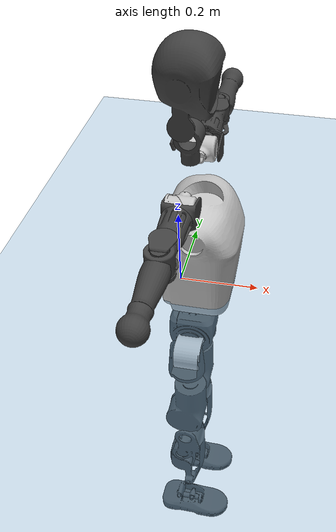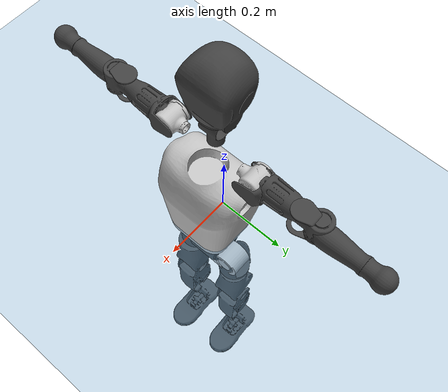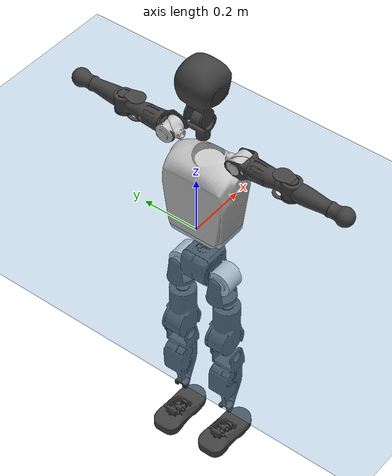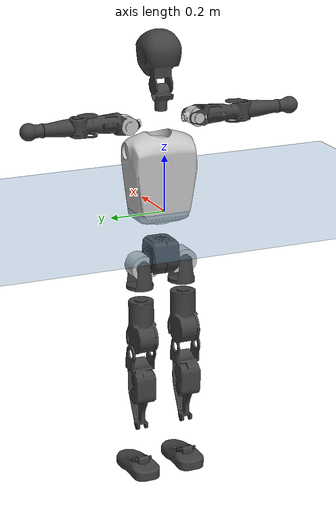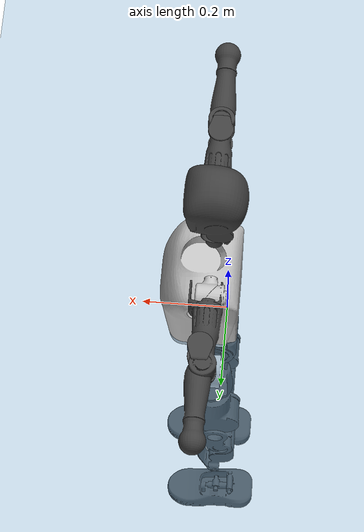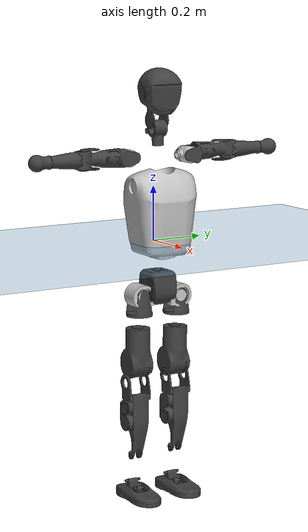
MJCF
<mujoco model="T1">
  <compiler angle="radian" assetdir="assets" balanceinertia="true" inertiafromgeom="false"/>

  <option timestep="0.005" density="1.2" viscosity="2e-05"/>

  <size nkey="1"/>

  <visual>
    <quality shadowsize="8192"/>
    <map shadowclip="0.5"/>
  </visual>

  <default>
    <default class="/">
      <joint armature="0.01" damping="0.01" frictionloss="0.1"/>
      <geom contype="0" conaffinity="0" group="1" solref="-1000 -80"/>
      <site size="0.01 0.005 0.005" group="5"/>
      <general forcelimited="true" biastype="affine" gainprm="25" biasprm="0 -25 -0.6"/>
      <default class="t1">
        <geom rgba="0.25 0.25 0.25 1"/>
        <default class="visual">
          <geom type="mesh" group="2"/>
        </default>
        <default class="collision">
          <geom group="3"/>
        </default>
        <default class="foot">
          <geom size="0.1115 0.05 0.015" type="box" condim="6" group="4" priority="1" solimp="0.015 1 0.015"/>
        </default>
        <default class="reward_collision_sphere">
          <geom group="5" rgba="1 0 0 1"/>
        </default>
      </default>
    </default>
  </default>

  <asset>
    <texture type="skybox" colorspace="auto" name="//unnamed_texture_0" builtin="gradient" rgb1="0.95 0.95 0.95" rgb2="0.95 0.95 0.95" width="100" height="600"/>
    <texture type="2d" colorspace="auto" name="texplane" builtin="checker" rgb1="0.345 0.575 0.748" rgb2="0.345 0.575 0.748" markrgb="1 1 1" width="512" height="512"/>
    <material name="MatPlane" class="/" texture="texplane" texuniform="true" texrepeat="2 2" specular="0.9"/>
    <mesh name="Trunk" class="/" file="Trunk.stl"/>
    <mesh name="H1" class="/" file="H1.stl"/>
    <mesh name="H2" class="/" file="H2.stl"/>
    <mesh name="AL1" class="/" file="AL1.stl"/>
    <mesh name="AL2" class="/" file="AL2.stl"/>
    <mesh name="AL3" class="/" file="AL3.stl"/>
    <mesh name="left_hand_link" class="/" file="left_hand_link.stl"/>
    <mesh name="AR1" class="/" file="AR1.stl"/>
    <mesh name="AR2" class="/" file="AR2.stl"/>
    <mesh name="AR3" class="/" file="AR3.stl"/>
    <mesh name="right_hand_link" class="/" file="right_hand_link.stl"/>
    <mesh name="Waist" class="/" file="Waist.stl"/>
    <mesh name="Hip_Pitch_Left" class="/" file="Hip_Pitch_Left.stl"/>
    <mesh name="Hip_Roll_Left" class="/" file="Hip_Roll_Left.stl"/>
    <mesh name="Hip_Yaw_Left" class="/" file="Hip_Yaw_Left.stl"/>
    <mesh name="Shank_Left" class="/" file="Shank_Left.stl"/>
    <mesh name="Ankle_Cross_Left" class="/" file="Ankle_Cross_Left.stl"/>
    <mesh name="left_foot_link" class="/" file="left_foot_link.stl"/>
    <mesh name="Hip_Pitch_Right" class="/" file="Hip_Pitch_Right.stl"/>
    <mesh name="Hip_Roll_Right" class="/" file="Hip_Roll_Right.stl"/>
    <mesh name="Hip_Yaw_Right" class="/" file="Hip_Yaw_Right.stl"/>
    <mesh name="Shank_Right" class="/" file="Shank_Right.stl"/>
    <mesh name="Ankle_Cross_Right" class="/" file="Ankle_Cross_Right.stl"/>
    <mesh name="right_foot_link" class="/" file="right_foot_link.stl"/>
  </asset>

  <worldbody>
    <geom name="floor" class="/" size="100 100 0.125" type="plane" group="0" material="MatPlane"/>
    <light name="toplight_shadow" class="/" pos="0 0 5" dir="0.0990148 0.0990148 -0.990148" type="directional" ambient="0.04 0.04 0.04" diffuse="0.55 0.55 0.55" specular="0.12 0.12 0.12"/>
    <light name="toplight_fill" class="/" pos="0 0 5" dir="0.0990148 0.0990148 -0.990148" type="directional" castshadow="false" ambient="0.04 0.04 0.04" diffuse="0.3 0.3 0.3" specular="0.08 0.08 0.08"/>
    <body name="trunk" childclass="t1" pos="0.00126469 -7.76488e-05 -0.00668391" quat="0.999999 0.000308247 -0.00145621 -0.000448756">
      <inertial pos="0.0349412 0.00608773 0.15062" quat="0.999967 0.00479889 -0.00603773 0.00269054" mass="9.26963" diaginertia="0.0034237 0.0191019 0.35636"/>
      <joint name="//unnamed_joint_0" type="free" armature="0" damping="0" frictionloss="0"/>
      <geom name="//unnamed_geom_1" class="visual" rgba="0.76 0.76 0.76 1" mesh="Trunk"/>
      <geom name="//unnamed_geom_2" class="collision" size="0.0688189 0.0917586 0.137638" pos="0.0318566 0 0.175597" type="box"/>
      <geom name="//unnamed_geom_3" class="reward_collision_sphere" size="0.105522" pos="0.0318566 0 0.146331"/>
      <geom name="//unnamed_geom_4" class="reward_collision_sphere" size="0.0137638" pos="0.0318566 0.0644731 0"/>
      <geom name="//unnamed_geom_5" class="reward_collision_sphere" size="0.0137638" pos="0.0318566 -0.0644731 0"/>
      <geom name="//unnamed_geom_6" class="reward_collision_sphere" size="0.0137638" pos="0.0318566 0.0811602 0.263395"/>
      <geom name="//unnamed_geom_7" class="reward_collision_sphere" size="0.0137638" pos="0.0318566 -0.0811602 0.263395"/>
      <site name="imu" pos="0.0542929 -0.0563196 0.0531401" size="0.00917586"/>
      <camera name="track" pos="0 -1.51701 0" quat="0.707107 0.707107 0 0" mode="trackcom"/>
      <camera name="ego_camera" pos="0.0647751 0 0.614589" quat="-0.5 -0.5 0.5 0.5"/>
      <body name="H1" pos="0.0324151 -5.30025e-05 0.357739" quat="0.999986 0.00102776 -0.00323422 -0.00401938">
        <inertial pos="-0.00145149 -0.00098784 0.0812527" quat="0.763919 -0.0127636 0.00111951 0.645185" mass="0.257931" diaginertia="9.89804e-06 4.81573e-05 0.000875117"/>
        <joint name="AAHead_yaw" pos="0 0 0" axis="0.0199022 0.0187296 0.999626" stiffness="0.00319844" range="-1.56334 1.53652" armature="0.00365901" damping="0.0433991" frictionloss="0.0986946"/>
        <geom name="//unnamed_geom_8" class="visual" mesh="H1"/>
        <body name="H2" pos="-0.0126031 0.00563289 0.0907575" quat="0.999997 -0.000562937 0.00225328 -0.000334328">
          <inertial pos="0.00164708 0.000239488 0.143059" quat="0.988276 0.108454 -0.0737159 -0.0781888" mass="0.505814" diaginertia="8.90512e-05 0.000483127 0.0109835"/>
          <joint name="Head_pitch" pos="0 0 0" axis="0.0267335 -0.999386 -0.0226528" range="-1.20955 0.464956" armature="0.00807774" damping="0.0240774" frictionloss="0.0904639"/>
          <geom name="//unnamed_geom_9" class="visual" mesh="H2"/>
          <geom name="//unnamed_geom_10" class="collision" size="0.0734068" pos="0.00530943 0 0.160964"/>
          <geom name="//unnamed_geom_11" class="reward_collision_sphere" size="0.0825827" pos="0.0106189 0 0.146331"/>
        </body>
      </body>
      <body name="AL1" pos="0.0342939 0.0775368 0.318418" quat="0.999994 -0.00171702 -0.00296871 0.000870581">
        <inertial pos="-0.00148109 0.0252012 -0.000271691" quat="0.504636 0.495476 -0.503317 0.496505" mass="0.412502" diaginertia="5.30693e-05 0.000335311 0.00203304"/>
        <joint name="Left_Shoulder_Pitch" pos="0 0 0" axis="-0.00796715 0.999936 0.00804133" stiffness="0.0156336" range="-3.38021 1.21062" armature="0.0100852" damping="0.0133341" frictionloss="0.120182"/>
        <geom name="//unnamed_geom_12" class="visual" rgba="0.76 0.76 0.76 1" mesh="AL1"/>
        <body name="AL2" pos="0.00850047 0.0309442 0.00098009" quat="1 0.00026027 -0.000235864 -8.92528e-06">
          <inertial pos="0.00376221 0.030408 -0.00957441" quat="0.492957 0.50804 -0.485852 0.512676" mass="0.0997739" diaginertia="1.52288e-05 8.92674e-05 0.00101786"/>
          <joint name="Left_Shoulder_Roll" pos="0 0 0" axis="-0.999663 0.0256111 0.00430127" range="-1.78539 1.52974" armature="0.0136324" damping="0.0350966" frictionloss="0.0921918"/>
          <geom name="//unnamed_geom_13" class="visual" mesh="AL2"/>
          <body name="AL3" pos="-0.00632856 0.0442813 0.00920002" quat="1 -6.43398e-05 5.93668e-05 -3.98966e-05">
            <inertial pos="-0.00643148 0.0649058 0.000604524" quat="0.705033 0.7088 -0.0178128 -0.0146385" mass="0.813627" diaginertia="0.000611221 0.00305433 0.00493145"/>
            <joint name="Left_Elbow_Pitch" pos="0 0 0" axis="-0.0589032 -0.998217 0.00961827" stiffness="0.0572867" range="-2.48777 2.10087" armature="0.0147967" damping="0.0698105" frictionloss="0.124837"/>
            <geom name="//unnamed_geom_14" class="visual" mesh="AL3"/>
            <geom name="//unnamed_geom_15" class="collision" size="0.0275276 0.0688189" pos="0 0.0379253 0" quat="0.707105 0.707108 0 0" type="cylinder"/>
            <geom name="//unnamed_geom_16" class="reward_collision_sphere" size="0.0330331"/>
            <body name="left_hand_link" pos="0.0083743 0.103822 -0.00160988" quat="0.999998 0.00143868 -0.00158487 0.000194201">
              <inertial pos="0.000150093 0.0829462 -0.00439227" quat="0.707463 0.706746 -0.00226146 0.00010533" mass="0.254941" diaginertia="0.000303031 0.00178933 0.00147946"/>
              <joint name="Left_Elbow_Yaw" pos="0 0 0" axis="-0.00121398 0.0326484 0.999466" stiffness="0.00814427" range="-2.35116 0.0202666" armature="0.00377005" damping="0.00897551" frictionloss="0.117521"/>
              <geom name="//unnamed_geom_17" class="visual" mesh="left_hand_link"/>
              <geom name="//unnamed_geom_18" class="collision" size="0.0275276 0.0802887" pos="0 0.0986059 0" quat="0.707105 0.707108 0 0" type="cylinder"/>
              <geom name="//unnamed_geom_19" class="reward_collision_sphere" size="0.0458793"/>
              <geom name="//unnamed_geom_20" class="reward_collision_sphere" size="0.0321155" pos="0 0.0834357 0"/>
              <geom name="//unnamed_geom_21" class="reward_collision_sphere" size="0.0321155" pos="0 0.163079 0"/>
            </body>
          </body>
        </body>
      </body>
      <body name="AR1" pos="0.0393375 -0.0857356 0.321922" quat="1 0.000363324 0.000644501 9.32879e-05">
        <inertial pos="0.0100077 -0.0375415 -0.00725777" quat="0.503502 0.526898 -0.455368 0.511374" mass="0.391326" diaginertia="6.21394e-05 0.000350289 0.00172597"/>
        <joint name="Right_Shoulder_Pitch" pos="0 0 0" axis="0.00281181 -0.999911 -0.0130348" range="-1.23726 3.3268" armature="0.0101322" damping="0" frictionloss="0.124424"/>
        <geom name="//unnamed_geom_22" class="visual" rgba="0.76 0.76 0.76 1" mesh="AR1"/>
        <body name="AR2" pos="0.00180371 -0.0328229 0.00167619" quat="0.999999 -0.000347207 -0.00125366 -0.000176977">
          <inertial pos="-6.60493e-05 -0.0287677 -0.00423934" quat="0.511607 0.487994 -0.511773 0.488066" mass="0.122603" diaginertia="1.71885e-05 7.64917e-05 0.001109"/>
          <joint name="Right_Shoulder_Roll" pos="0 0 0" axis="-0.999858 0.00544327 0.0159657" range="-1.83791 1.34475" armature="0.0123516" damping="0" frictionloss="0.0907851"/>
          <geom name="//unnamed_geom_23" class="visual" mesh="AR2"/>
          <body name="AR3" pos="-0.000558015 -0.0457959 0.000631245" quat="1 -0.000412053 0.000188644 -0.000357742">
            <inertial pos="-0.00148641 -0.0541657 -0.0082448" quat="0.732167 0.681019 0.0104488 0.00600762" mass="0.787755" diaginertia="0.000520581 0.00357563 0.00381295"/>
            <joint name="Right_Elbow_Pitch" pos="0 0 0" axis="0.0209227 0.999773 0.00394363" range="-2.38776 2.41927" armature="0.00851053" damping="0" frictionloss="0.090775"/>
            <geom name="//unnamed_geom_24" class="visual" mesh="AR3"/>
            <geom name="//unnamed_geom_25" class="collision" size="0.0275276 0.0688189" pos="0 -0.0379253 0" quat="0.707105 0.707108 0 0" type="cylinder"/>
            <geom name="//unnamed_geom_26" class="reward_collision_sphere" size="0.0330331"/>
            <body name="right_hand_link" pos="-0.000309788 -0.113432 0.0012646" quat="0.999998 0.00128399 0.000982736 -0.00121698">
              <inertial pos="0.00155467 -0.0829764 0.00932511" quat="0.706123 0.708081 -0.00191253 0.00274843" mass="0.256739" diaginertia="0.000331125 0.0020047 0.00153887"/>
              <joint name="Right_Elbow_Yaw" pos="0 0 0" axis="-0.00189888 0.000799178 0.999998" range="0.000552139 2.47586" armature="0.00993028" damping="0.0174017" frictionloss="0.0608692"/>
              <geom name="//unnamed_geom_27" class="visual" mesh="right_hand_link"/>
              <geom name="//unnamed_geom_28" class="collision" size="0.0275276 0.0802887" pos="0 -0.0986059 0" quat="0.707105 0.707108 0 0" type="cylinder"/>
              <geom name="//unnamed_geom_29" class="reward_collision_sphere" size="0.0458793"/>
              <geom name="//unnamed_geom_30" class="reward_collision_sphere" size="0.0321155" pos="0 -0.0834357 0"/>
              <geom name="//unnamed_geom_31" class="reward_collision_sphere" size="0.0321155" pos="0 -0.163079 0"/>
            </body>
          </body>
        </body>
      </body>
      <body name="Waist" pos="0.0312736 -0.000120232 -0.166804" quat="0.999996 0.00100484 0.00222824 0.00130007">
        <inertial pos="0.0142509 -0.00740808 0.0111012" quat="0.983992 -0.000766522 -0.178152 0.0045659" mass="2.11919" diaginertia="0.000268578 0.00140489 0.0310122"/>
        <joint name="Waist" pos="0 0 0" axis="-0.00665152 0.0553638 0.998444" range="-1.62319 1.62818" armature="0.0112495" damping="0" frictionloss="0.0843107"/>
        <geom name="//unnamed_geom_32" class="visual" mesh="Waist"/>
        <body name="Hip_Pitch_Left" pos="0.0101092 0.0746247 -0.00717692" quat="0.999979 -0.00222259 -0.00220602 0.00561519">
          <inertial pos="0.00861801 -0.0165024 -0.0286292" quat="0.976159 0.216865 0.00914127 0.000103047" mass="0.85062" diaginertia="8.64643e-05 0.000426533 0.00827833"/>
          <joint name="Left_Hip_Pitch" pos="0 0 0" axis="0.0138869 0.999803 -0.0142064" range="-1.77227 1.59348" armature="0.0132225" damping="0" frictionloss="0.0394647"/>
          <geom name="//unnamed_geom_33" class="visual" rgba="0.76 0.76 0.76 1" mesh="Hip_Pitch_Left"/>
          <body name="Hip_Roll_Left" pos="-0.0124971 0.00705245 -0.0166542" quat="0.99998 -0.00216369 -0.000450885 0.00593578">
            <inertial pos="-0.00563682 0.00395452 -0.06804" quat="0.705734 -0.00728699 -0.00416286 0.708427" mass="0.313265" diaginertia="7.23217e-05 0.000376026 0.00330168"/>
            <joint name="Left_Hip_Roll" pos="0 0 0" axis="-0.999984 -0.00266937 -0.00508224" range="-1.58034 0.227995" armature="0.00627839" damping="0" frictionloss="0.0903476"/>
            <geom name="//unnamed_geom_34" class="visual" mesh="Hip_Roll_Left"/>
            <geom name="//unnamed_geom_35" class="reward_collision_sphere" size="0.0504672"/>
            <body name="Hip_Yaw_Left" pos="-0.00469525 -0.00262674 -0.125051" quat="1 5.78394e-06 -6.92983e-05 0.000525063">
              <inertial pos="-0.00578985 -0.0125796 -0.141035" quat="0.694907 -0.0263646 -0.0379438 0.717613" mass="1.66159" diaginertia="0.00108348 0.0063382 0.0174084"/>
              <joint name="Left_Hip_Yaw" pos="0 0 0" axis="0.0143755 0.000772197 -0.999896" range="-1.0575 0.966289" armature="0.00949671" damping="0.00501499" frictionloss="0.0614764"/>
              <geom name="//unnamed_geom_36" class="visual" mesh="Hip_Yaw_Left"/>
              <geom name="//unnamed_geom_37" class="collision" size="0.0458793 0.0734068" type="cylinder"/>
              <body name="Shank_Left" pos="-0.00967168 0.00522201 -0.19013" quat="0.999991 0.00194016 0.000523926 -0.00369436">
                <inertial pos="-0.00152749 0.00719892 -0.185659" quat="0.994967 0.0477375 -0.0282096 0.0834653" mass="1.36904" diaginertia="0.00146855 0.00822525 0.0126848"/>
                <joint name="Left_Knee_Pitch" pos="0 0 0" axis="-0.0095336 0.999924 -0.00786401" range="-0.0401628 2.52333" armature="0.00525701" damping="0.0254346" frictionloss="0.0894376"/>
                <geom name="//unnamed_geom_38" class="visual" mesh="Shank_Left"/>
                <geom name="//unnamed_geom_39" class="collision" size="0.0458793 0.0688189" pos="0 0 -0.175597" type="cylinder"/>
                <geom name="//unnamed_geom_40" class="reward_collision_sphere" size="0.0596431"/>
                <body name="Ankle_Cross_Left" pos="-0.00541494 0.0081745 -0.412332" quat="0.999998 0.00147349 -0.00129494 -0.000261013">
                  <inertial pos="-0.00163941 0.00223648 -0.0143273" quat="0.421813 0.548575 0.543796 0.47479" mass="0.0593739" diaginertia="1.07737e-06 6.27695e-06 7.45596e-05"/>
                  <joint name="Left_Ankle_Pitch" pos="0 0 0" axis="0.00429021 0.999951 0.00890292" range="-0.647643 0.129139" armature="0.0064185" damping="0.0677431" frictionloss="0.0646598"/>
                  <geom name="//unnamed_geom_41" class="visual" mesh="Ankle_Cross_Left"/>
                  <body name="left_foot_link" pos="0.00533393 0.0053429 -0.00795222" quat="0.999984 0.00133951 -0.00236166 0.00487967">
                    <inertial pos="0.00135632 -0.000920804 -0.0122802" quat="0.0290336 0.636761 0.0195518 0.770266" mass="0.451154" diaginertia="0.000100263 0.000510575 0.0103962"/>
                    <joint name="Left_Ankle_Roll" pos="0 0 0" axis="-0.998927 -0.0101699 -0.0451817" range="-0.424327 0.210268" armature="0.00883326" damping="0.00713912" frictionloss="0.0320143"/>
                    <geom name="//unnamed_geom_42" class="visual" mesh="left_foot_link"/>
                    <geom name="left_foot" class="foot" size="0.099638 0.0636965 0.00707869" pos="0.00530943 0 -0.0219496"/>
                    <geom name="//unnamed_geom_44" class="reward_collision_sphere" size="0.0477144" pos="0.00530943 0 -0.0219496"/>
                    <geom name="//unnamed_geom_45" class="reward_collision_sphere" size="0.0275276" pos="0.0504396 -0.0174457 -0.0219496"/>
                    <geom name="//unnamed_geom_46" class="reward_collision_sphere" size="0.0275276" pos="-0.037166 -0.0174457 -0.0219496"/>
                    <site name="left_foot" class="foot" pos="0.00530943 0 -0.0219496" size="0.00917586"/>
                  </body>
                </body>
              </body>
            </body>
          </body>
        </body>
        <body name="Hip_Pitch_Right" pos="0.00256639 -0.0798073 0.000416966" quat="1 2.8885e-05 -3.71378e-05 1.96581e-05">
          <inertial pos="0.00405478 0.00634455 -0.0218802" quat="0.983616 -0.176233 0.0377702 -0.00392393" mass="0.947863" diaginertia="8.80872e-05 0.000396346 0.00999129"/>
          <joint name="Right_Hip_Pitch" pos="0 0 0" axis="-0.00620176 -0.999979 0.00212729" range="-1.55153 1.90578" armature="0.00710986" damping="0.00878195" frictionloss="0.0990138"/>
          <geom name="//unnamed_geom_47" class="visual" rgba="0.76 0.76 0.76 1" mesh="Hip_Pitch_Right"/>
          <body name="Hip_Roll_Right" pos="-0.00618055 0.00328818 -0.0188993" quat="1 0.000249725 -0.000220718 0.000162203">
            <inertial pos="0.0030217 -0.00665966 -0.0787683" quat="0.702821 -0.0200658 0.0294302 0.710474" mass="0.32238" diaginertia="7.35067e-05 0.000379982 0.00379489"/>
            <joint name="Right_Hip_Roll" pos="0 0 0" axis="-0.999971 0.00458355 -0.00606153" stiffness="0.0644224" range="-0.18954 1.54141" armature="0.0119864" damping="0.0072802" frictionloss="0.0986911"/>
            <geom name="//unnamed_geom_48" class="visual" mesh="Hip_Roll_Right"/>
            <geom name="//unnamed_geom_49" class="reward_collision_sphere" size="0.0504672"/>
            <body name="Hip_Yaw_Right" pos="0.00947501 -0.0122844 -0.118782" quat="1 -0.000299925 0.000546257 -6.81476e-05">
              <inertial pos="0.00421877 0.00071339 -0.118869" quat="0.743417 -0.0260437 -0.0328262 0.667514" mass="1.47185" diaginertia="0.00109528 0.00632026 0.0172901"/>
              <joint name="Right_Hip_Yaw" pos="0 0 0" axis="0.00113939 -0.0014993 -0.999998" stiffness="0.0120444" range="-1.1935 1.11269" armature="0.00950602" damping="0.0134189" frictionloss="0.0904278"/>
              <geom name="//unnamed_geom_50" class="visual" mesh="Hip_Yaw_Right"/>
              <geom name="//unnamed_geom_51" class="collision" size="0.0458793 0.0734068" type="cylinder"/>
              <body name="Shank_Right" pos="-0.00881749 -0.00781949 -0.203507" quat="0.999999 -0.00105317 -0.000461737 -0.000666002">
                <inertial pos="-0.0160865 -0.000221761 -0.175448" quat="0.998053 0.0399185 -0.013937 -0.0458595" mass="1.67146" diaginertia="0.00163782 0.00859864 0.0145348"/>
                <joint name="Right_Knee_Pitch" pos="0 0 0" axis="-0.0356252 -0.999151 0.0207007" range="-2.36387 -0.0271633" armature="0.00662363" damping="0.0332136" frictionloss="0.0544229"/>
                <geom name="//unnamed_geom_52" class="visual" mesh="Shank_Right"/>
                <geom name="//unnamed_geom_53" class="collision" size="0.0458793 0.0688189" pos="0 0 -0.175597" type="cylinder"/>
                <geom name="//unnamed_geom_54" class="reward_collision_sphere" size="0.0596431"/>
                <body name="Ankle_Cross_Right" pos="0.00511048 0.0114251 -0.406977" quat="0.999985 -0.00505855 -0.000379628 -0.00183006">
                  <inertial pos="-0.00112573 0.00201835 -0.0116117" quat="0.446782 0.545214 0.550812 0.446916" mass="0.0562826" diaginertia="1.34821e-06 6.21448e-06 7.73532e-05"/>
                  <joint name="Right_Ankle_Pitch" pos="0 0 0" axis="-0.0171336 -0.99985 0.00261056" range="-0.258102 0.6393" armature="0.00874437" damping="0" frictionloss="0.0919191"/>
                  <geom name="//unnamed_geom_55" class="visual" mesh="Ankle_Cross_Right"/>
                  <body name="right_foot_link" pos="0.000370122 -0.00227685 -0.0111918" quat="0.999991 -0.00407148 0.000886208 0.000147179">
                    <inertial pos="0.00804578 0.000919953 -0.0137172" quat="-0.00593312 0.612607 -0.00299207 0.79036" mass="0.523632" diaginertia="0.000128859 0.000646899 0.015155"/>
                    <joint name="Right_Ankle_Roll" pos="0 0 0" axis="-0.99995 -0.00976846 -0.00207802" range="-0.553204 0.534786" armature="0.00813244" damping="0.00947724" frictionloss="0.085511"/>
                    <geom name="//unnamed_geom_56" class="visual" mesh="right_foot_link"/>
                    <geom name="right_foot" class="foot" size="0.0999691 0.060041 0.0132131" pos="0.00530943 0 -0.0219496"/>
                    <geom name="//unnamed_geom_58" class="reward_collision_sphere" size="0.0367034"/>
                    <geom name="//unnamed_geom_59" class="reward_collision_sphere" size="0.0275276" pos="0.00530943 0 -0.0219496"/>
                    <geom name="//unnamed_geom_60" class="reward_collision_sphere" size="0.0275276" pos="0.0504396 0.0174457 -0.0219496"/>
                    <geom name="//unnamed_geom_61" class="reward_collision_sphere" size="0.0275276" pos="-0.037166 0.0174457 -0.0219496"/>
                    <site name="right_foot" class="foot" pos="0.00530943 0 -0.0219496" size="0.00917586"/>
                  </body>
                </body>
              </body>
            </body>
          </body>
        </body>
      </body>
    </body>
  </worldbody>

  <contact>
    <pair class="/" geom1="floor" geom2="left_foot" name="//unnamed_contact_0"/>
    <pair class="/" geom1="floor" geom2="right_foot" name="//unnamed_contact_1"/>
  </contact>

  <actuator>
    <general name="AAHead_yaw" class="/" joint="AAHead_yaw" forcerange="-7.02814 7.02814" gainprm="29.2241" biasprm="0 -29.2241 -0.615933"/>
    <general name="Head_pitch" class="/" joint="Head_pitch" forcerange="-6.06299 6.06299" gainprm="29.2241" biasprm="0 -29.2241 -0.615933"/>
    <general name="Left_Shoulder_Pitch" class="/" joint="Left_Shoulder_Pitch" forcerange="-16.5964 16.5964" gainprm="29.2241" biasprm="0 -29.2241 -0.615933"/>
    <general name="Left_Shoulder_Roll" class="/" joint="Left_Shoulder_Roll" forcerange="-19.7855 19.7855" gainprm="29.2241" biasprm="0 -29.2241 -0.615933"/>
    <general name="Left_Elbow_Pitch" class="/" joint="Left_Elbow_Pitch" forcerange="-23.6005 23.6005" gainprm="29.2241" biasprm="0 -29.2241 -0.615933"/>
    <general name="Left_Elbow_Yaw" class="/" joint="Left_Elbow_Yaw" forcerange="-10.494 10.494" gainprm="29.2241" biasprm="0 -29.2241 -0.615933"/>
    <general name="Right_Shoulder_Pitch" class="/" joint="Right_Shoulder_Pitch" forcerange="-10.1721 10.1721" gainprm="29.2241" biasprm="0 -29.2241 -0.615933"/>
    <general name="Right_Shoulder_Roll" class="/" joint="Right_Shoulder_Roll" forcerange="-18.7413 18.7413" gainprm="29.2241" biasprm="0 -29.2241 -0.615933"/>
    <general name="Right_Elbow_Pitch" class="/" joint="Right_Elbow_Pitch" forcerange="-16.3148 16.3148" gainprm="29.2241" biasprm="0 -29.2241 -0.615933"/>
    <general name="Right_Elbow_Yaw" class="/" joint="Right_Elbow_Yaw" forcerange="-17.3286 17.3286" gainprm="29.2241" biasprm="0 -29.2241 -0.615933"/>
    <general name="Waist" class="/" joint="Waist" forcerange="-26.8646 26.8646" gainprm="29.2241" biasprm="0 -29.2241 -0.615933"/>
    <general name="Left_Hip_Pitch" class="/" joint="Left_Hip_Pitch" forcerange="-46.9145 46.9145" gainprm="29.2241" biasprm="0 -29.2241 -0.615933"/>
    <general name="Left_Hip_Roll" class="/" joint="Left_Hip_Roll" forcerange="-16.8864 16.8864" gainprm="29.2241" biasprm="0 -29.2241 -0.615933"/>
    <general name="Left_Hip_Yaw" class="/" joint="Left_Hip_Yaw" forcerange="-39.4641 39.4641" gainprm="29.2241" biasprm="0 -29.2241 -0.615933"/>
    <general name="Left_Knee_Pitch" class="/" joint="Left_Knee_Pitch" forcerange="-78.6186 78.6186" gainprm="29.2241" biasprm="0 -29.2241 -0.615933"/>
    <general name="Left_Ankle_Pitch" class="/" joint="Left_Ankle_Pitch" forcerange="-19.451 19.451" gainprm="29.2241" biasprm="0 -29.2241 -0.615933"/>
    <general name="Left_Ankle_Roll" class="/" joint="Left_Ankle_Roll" forcerange="-13.5796 13.5796" gainprm="29.2241" biasprm="0 -29.2241 -0.615933"/>
    <general name="Right_Hip_Pitch" class="/" joint="Right_Hip_Pitch" forcerange="-37.5925 37.5925" gainprm="29.2241" biasprm="0 -29.2241 -0.615933"/>
    <general name="Right_Hip_Roll" class="/" joint="Right_Hip_Roll" forcerange="-26.1272 26.1272" gainprm="29.2241" biasprm="0 -29.2241 -0.615933"/>
    <general name="Right_Hip_Yaw" class="/" joint="Right_Hip_Yaw" forcerange="-22.397 22.397" gainprm="29.2241" biasprm="0 -29.2241 -0.615933"/>
    <general name="Right_Knee_Pitch" class="/" joint="Right_Knee_Pitch" forcerange="-53.3324 53.3324" gainprm="29.2241" biasprm="0 -29.2241 -0.615933"/>
    <general name="Right_Ankle_Pitch" class="/" joint="Right_Ankle_Pitch" forcerange="-24.7406 24.7406" gainprm="29.2241" biasprm="0 -29.2241 -0.615933"/>
    <general name="Right_Ankle_Roll" class="/" joint="Right_Ankle_Roll" forcerange="-13.7113 13.7113" gainprm="29.2241" biasprm="0 -29.2241 -0.615933"/>
  </actuator>

  <sensor>
    <gyro site="imu" name="imu_angular_velocity"/>
    <velocimeter site="imu" name="imu_linear_velocity"/>
    <framelinvel objtype="site" objname="left_foot" name="left_foot_global_linear_velocity"/>
    <framelinvel objtype="site" objname="right_foot" name="right_foot_global_linear_velocity"/>
  </sensor>

  <keyframe>
    <key name="home" qpos="0 0 0.6385 1 0 0 0 0 0 0 1.4 0 -0.4 0 -1.4 0 0.4 0 -0.4 0 0 0.8 -0.4 0 0.4 0 0 -0.8 0.4 0"/>
  </keyframe>
</mujoco>
